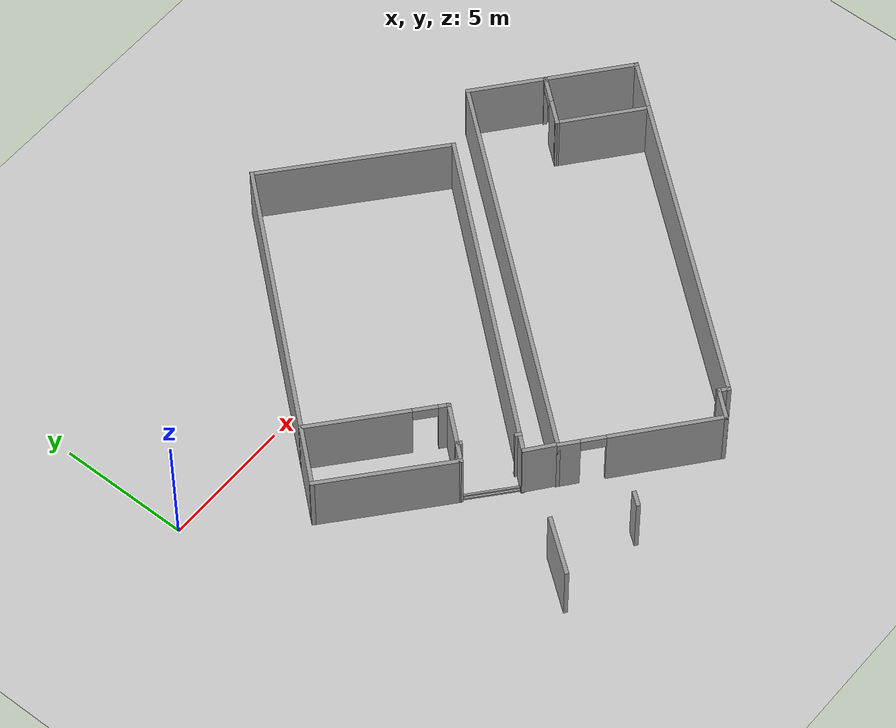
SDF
<sdf version="1.6">
 <world name="default">
  <model name="ground_plane">
   <static>1</static>
   <link name="link">
    <collision name="collision">
     <geometry><plane><normal>0 0 1</normal><size>100 100</size></plane></geometry>
     <surface>
      <contact><collide_bitmask>65535</collide_bitmask></contact>
      <friction><ode><mu>100</mu><mu2>50</mu2></ode></friction>
     </surface>
    </collision>
    <visual name="visual">
     <cast_shadows>0</cast_shadows>
     <geometry><plane><normal>0 0 1</normal><size>100 100</size></plane></geometry>
     <material>
      <script><uri>file://media/materials/scripts/gazebo.material</uri><name>Gazebo/Grey</name></script>
     </material>
    </visual>
   </link>
  </model>
  <model name="1804">
   <pose>10.1904 -0.701306 0 0 0 -0.710113</pose>
   <link name="Stairs_1">
    <visual name="Stairs_1_Visual_0">
     <pose>2.5799 -6.58604 0.0375 0 -0 -3.14159</pose>
     <geometry><box><size>2.12 0.075 0.075</size></box></geometry>
     <material>
      <script><uri>file://media/materials/scripts/gazebo.material</uri><name>Gazebo/Grey</name></script>
      <ambient>1 1 1 1</ambient>
     </material>
     <meta><layer>0</layer></meta>
    </visual>
    <collision name="Stairs_1_Collision_0">
     <geometry><box><size>2.12 0.075 0.075</size></box></geometry>
     <pose>2.5799 -6.58604 0.0375 0 -0 -3.14159</pose>
    </collision>
    <visual name="Stairs_1_Visual_1">
     <pose>2.5799 -6.51104 0.1125 0 -0 -3.14159</pose>
     <geometry><box><size>2.12 0.075 0.075</size></box></geometry>
     <material>
      <script><uri>file://media/materials/scripts/gazebo.material</uri><name>Gazebo/Grey</name></script>
      <ambient>1 1 1 1</ambient>
     </material>
     <meta><layer>0</layer></meta>
    </visual>
    <collision name="Stairs_1_Collision_1">
     <geometry><box><size>2.12 0.075 0.075</size></box></geometry>
     <pose>2.5799 -6.51104 0.1125 0 -0 -3.14159</pose>
    </collision>
   </link>
   <link name="Wall_40">
    <collision name="Wall_40_Collision">
     <geometry><box><size>5.25 0.15 2.5</size></box></geometry>
     <pose>0 0 1.25 0 -0 0</pose>
    </collision>
    <visual name="Wall_40_Visual">
     <pose>0 0 1.25 0 -0 0</pose>
     <geometry><box><size>5.25 0.15 2.5</size></box></geometry>
     <material>
      <script><uri>file://media/materials/scripts/gazebo.material</uri><name>Gazebo/Grey</name></script>
      <ambient>1 1 1 1</ambient>
     </material>
     <meta><layer>0</layer></meta>
    </visual>
    <pose>-1.0762 -6.6225 0 0 -0 3.14159</pose>
   </link>
   <link name="Wall_41">
    <collision name="Wall_41_Collision">
     <geometry><box><size>13.395 0.15 2.5</size></box></geometry>
     <pose>0 0 1.25 0 -0 0</pose>
    </collision>
    <visual name="Wall_41_Visual">
     <pose>0 0 1.25 0 -0 0</pose>
     <geometry><box><size>13.395 0.15 2.5</size></box></geometry>
     <material>
      <script><uri>file://media/materials/scripts/gazebo.material</uri><name>Gazebo/Grey</name></script>
      <ambient>1 1 1 1</ambient>
     </material>
     <meta><layer>0</layer></meta>
    </visual>
    <pose>-3.6262 0 0 0 -0 1.5708</pose>
   </link>
   <link name="Wall_42">
    <collision name="Wall_42_Collision">
     <geometry><box><size>7.397 0.15 2.5</size></box></geometry>
     <pose>0 0 1.25 0 -0 0</pose>
    </collision>
    <visual name="Wall_42_Visual">
     <pose>0 0 1.25 0 -0 0</pose>
     <geometry><box><size>7.397 0.15 2.5</size></box></geometry>
     <material>
      <script><uri>file://media/materials/scripts/gazebo.material</uri><name>Gazebo/Grey</name></script>
      <ambient>1 1 1 1</ambient>
     </material>
     <meta><layer>0</layer></meta>
    </visual>
    <pose>-0.002699 6.6225 0 0 -0 0</pose>
   </link>
   <link name="Wall_43">
    <collision name="Wall_43_Collision">
     <geometry><box><size>13.3954 0.15 2.5</size></box></geometry>
     <pose>0 0 1.25 0 -0 0</pose>
    </collision>
    <visual name="Wall_43_Visual">
     <pose>0 0 1.25 0 -0 0</pose>
     <geometry><box><size>13.3954 0.15 2.5</size></box></geometry>
     <material>
      <script><uri>file://media/materials/scripts/gazebo.material</uri><name>Gazebo/Grey</name></script>
      <ambient>1 1 1 1</ambient>
     </material>
     <meta><layer>0</layer></meta>
    </visual>
    <pose>3.6208 0 0 0 -0 -1.5708</pose>
   </link>
   <link name="Wall_45">
    <collision name="Wall_45_Collision">
     <geometry><box><size>0.854548 0.15 2.5</size></box></geometry>
     <pose>0 0 1.25 0 -0 0</pose>
    </collision>
    <visual name="Wall_45_Visual">
     <pose>0 0 1.25 0 -0 0</pose>
     <geometry><box><size>0.854548 0.15 2.5</size></box></geometry>
     <material>
      <script><uri>file://media/materials/scripts/gazebo.material</uri><name>Gazebo/Grey</name></script>
      <ambient>1 1 1 1</ambient>
     </material>
     <meta><layer>0</layer></meta>
    </visual>
    <pose>1.47361 -6.27023 0 0 -0 1.57135</pose>
   </link>
   <link name="Wall_46">
    <collision name="Wall_46_Collision">
     <geometry><box><size>0.25 0.15 2.5</size></box></geometry>
     <pose>0 0 1.25 0 -0 0</pose>
    </collision>
    <visual name="Wall_46_Visual">
     <pose>0 0 1.25 0 -0 0</pose>
     <geometry><box><size>0.25 0.15 2.5</size></box></geometry>
     <material>
      <script><uri>file://media/materials/scripts/gazebo.material</uri><name>Gazebo/Grey</name></script>
      <ambient>1 1 1 1</ambient>
     </material>
     <meta><layer>0</layer></meta>
    </visual>
    <pose>1.52341 -5.91795 0 0 -0 0</pose>
   </link>
   <link name="Wall_48">
    <collision name="Wall_48_Collision">
     <geometry><box><size>0.25 0.15 2.5</size></box></geometry>
     <pose>0 0 1.25 0 -0 0</pose>
    </collision>
    <visual name="Wall_48_Visual">
     <pose>0 0 1.25 0 -0 0</pose>
     <geometry><box><size>0.25 0.15 2.5</size></box></geometry>
     <material>
      <script><uri>file://media/materials/scripts/gazebo.material</uri><name>Gazebo/Grey</name></script>
      <ambient>1 1 1 1</ambient>
     </material>
     <meta><layer>0</layer></meta>
    </visual>
    <pose>3.57659 -5.92481 0 0 -0 0</pose>
   </link>
   <link name="Wall_50">
    <collision name="Wall_50_Collision">
     <geometry><box><size>1.75 0.15 2.5</size></box></geometry>
     <pose>0 0 1.25 0 -0 0</pose>
    </collision>
    <visual name="Wall_50_Visual">
     <pose>0 0 1.25 0 -0 0</pose>
     <geometry><box><size>1.75 0.15 2.5</size></box></geometry>
     <material>
      <script><uri>file://media/materials/scripts/gazebo.material</uri><name>Gazebo/Grey</name></script>
      <ambient>1 1 1 1</ambient>
     </material>
     <meta><layer>0</layer></meta>
    </visual>
    <pose>1.47341 -5.11795 0 0 -0 1.5708</pose>
   </link>
   <link name="Wall_51">
    <pose>-1.07659 -4.31795 0 0 -0 3.14159</pose>
    <visual name="Wall_51_Visual_0">
     <pose>-2.40355 0 1.25 0 -0 0</pose>
     <geometry><box><size>0.442906 0.15 2.5</size></box></geometry>
     <material>
      <script><uri>file://media/materials/scripts/gazebo.material</uri><name>Gazebo/Grey</name></script>
      <ambient>1 1 1 1</ambient>
     </material>
     <meta><layer>0</layer></meta>
    </visual>
    <collision name="Wall_51_Collision_0">
     <geometry><box><size>0.442906 0.15 2.5</size></box></geometry>
     <pose>-2.40355 0 1.25 0 -0 0</pose>
    </collision>
    <visual name="Wall_51_Visual_1">
     <pose>0.671453 0 1.25 0 -0 0</pose>
     <geometry><box><size>3.90709 0.15 2.5</size></box></geometry>
     <material>
      <script><uri>file://media/materials/scripts/gazebo.material</uri><name>Gazebo/Grey</name></script>
      <ambient>1 1 1 1</ambient>
     </material>
     <meta><layer>0</layer></meta>
    </visual>
    <collision name="Wall_51_Collision_1">
     <geometry><box><size>3.90709 0.15 2.5</size></box></geometry>
     <pose>0.671453 0 1.25 0 -0 0</pose>
    </collision>
    <visual name="Wall_51_Visual_2">
     <pose>-1.73209 0 2.25 0 -0 0</pose>
     <geometry><box><size>0.9 0.15 0.5</size></box></geometry>
     <material>
      <script><uri>file://media/materials/scripts/gazebo.material</uri><name>Gazebo/Grey</name></script>
      <ambient>1 1 1 1</ambient>
     </material>
     <meta><layer>0</layer></meta>
    </visual>
    <collision name="Wall_51_Collision_2">
     <geometry><box><size>0.9 0.15 0.5</size></box></geometry>
     <pose>-1.73209 0 2.25 0 -0 0</pose>
    </collision>
   </link>
   <static>1</static>
  </model>
  <model name="1803">
   <pose>16.8833 -4.84922 0 0 -0 2.44874</pose>
   <link name="Wall_14">
    <pose>0.175076 7.7485 0 0 -0 0</pose>
    <visual name="Wall_14_Visual_0">
     <pose>-0.877839 0 1.25 0 -0 0</pose>
     <geometry><box><size>4.24432 0.15 2.5</size></box></geometry>
     <material>
      <script><uri>file://media/materials/scripts/gazebo.material</uri><name>Gazebo/Grey</name></script>
      <ambient>1 1 1 1</ambient>
     </material>
     <meta><layer>0</layer></meta>
    </visual>
    <collision name="Wall_14_Collision_0">
     <geometry><box><size>4.24432 0.15 2.5</size></box></geometry>
     <pose>-0.877839 0 1.25 0 -0 0</pose>
    </collision>
    <visual name="Wall_14_Visual_1">
     <pose>2.57216 0 1.25 0 -0 0</pose>
     <geometry><box><size>0.855678 0.15 2.5</size></box></geometry>
     <material>
      <script><uri>file://media/materials/scripts/gazebo.material</uri><name>Gazebo/Grey</name></script>
      <ambient>1 1 1 1</ambient>
     </material>
     <meta><layer>0</layer></meta>
    </visual>
    <collision name="Wall_14_Collision_1">
     <geometry><box><size>0.855678 0.15 2.5</size></box></geometry>
     <pose>2.57216 0 1.25 0 -0 0</pose>
    </collision>
    <visual name="Wall_14_Visual_2">
     <pose>1.69432 0 2.25 0 -0 0</pose>
     <geometry><box><size>0.9 0.15 0.5</size></box></geometry>
     <material>
      <script><uri>file://media/materials/scripts/gazebo.material</uri><name>Gazebo/Grey</name></script>
      <ambient>1 1 1 1</ambient>
     </material>
     <meta><layer>0</layer></meta>
    </visual>
    <collision name="Wall_14_Collision_2">
     <geometry><box><size>0.9 0.15 0.5</size></box></geometry>
     <pose>1.69432 0 2.25 0 -0 0</pose>
    </collision>
   </link>
   <link name="Wall_15">
    <collision name="Wall_15_Collision">
     <geometry><box><size>15.647 0.15 2.5</size></box></geometry>
     <pose>0 0 1.25 0 -0 0</pose>
    </collision>
    <visual name="Wall_15_Visual">
     <pose>0 0 1.25 0 -0 0</pose>
     <geometry><box><size>15.647 0.15 2.5</size></box></geometry>
     <material>
      <script><uri>file://media/materials/scripts/gazebo.material</uri><name>Gazebo/Grey</name></script>
      <ambient>1 1 1 1</ambient>
     </material>
     <meta><layer>0</layer></meta>
    </visual>
    <pose>3.10008 -0 0 0 -0 -1.5708</pose>
   </link>
   <link name="Wall_17">
    <collision name="Wall_17_Collision">
     <geometry><box><size>2.15 0.15 2.5</size></box></geometry>
     <pose>0 0 1.25 0 -0 0</pose>
    </collision>
    <visual name="Wall_17_Visual">
     <pose>0 0 1.25 0 -0 0</pose>
     <geometry><box><size>2.15 0.15 2.5</size></box></geometry>
     <material>
      <script><uri>file://media/materials/scripts/gazebo.material</uri><name>Gazebo/Grey</name></script>
      <ambient>1 1 1 1</ambient>
     </material>
     <meta><layer>0</layer></meta>
    </visual>
    <pose>-3.09992 -6.7485 0 0 -0 -1.5708</pose>
   </link>
   <link name="Wall_18">
    <collision name="Wall_18_Collision">
     <geometry><box><size>3.5 0.15 2.5</size></box></geometry>
     <pose>0 0 1.25 0 -0 0</pose>
    </collision>
    <visual name="Wall_18_Visual">
     <pose>0 0 1.25 0 -0 0</pose>
     <geometry><box><size>3.5 0.15 2.5</size></box></geometry>
     <material>
      <script><uri>file://media/materials/scripts/gazebo.material</uri><name>Gazebo/Grey</name></script>
      <ambient>1 1 1 1</ambient>
     </material>
     <meta><layer>0</layer></meta>
    </visual>
    <pose>-1.42492 -7.7485 0 0 -0 0</pose>
   </link>
   <link name="Wall_2">
    <collision name="Wall_2_Collision">
     <geometry><box><size>1.25 0.15 2.5</size></box></geometry>
     <pose>0 0 1.25 0 -0 0</pose>
    </collision>
    <visual name="Wall_2_Visual">
     <pose>0 0 1.25 0 -0 0</pose>
     <geometry><box><size>1.25 0.15 2.5</size></box></geometry>
     <material>
      <script><uri>file://media/materials/scripts/gazebo.material</uri><name>Gazebo/Grey</name></script>
      <ambient>1 1 1 1</ambient>
     </material>
     <meta><layer>0</layer></meta>
    </visual>
    <pose>-2.74992 7.1985 0 0 -0 -1.5708</pose>
   </link>
   <link name="Wall_3">
    <collision name="Wall_3_Collision">
     <geometry><box><size>0.5 0.15 2.5</size></box></geometry>
     <pose>0 0 1.25 0 -0 0</pose>
    </collision>
    <visual name="Wall_3_Visual">
     <pose>0 0 1.25 0 -0 0</pose>
     <geometry><box><size>0.5 0.15 2.5</size></box></geometry>
     <material>
      <script><uri>file://media/materials/scripts/gazebo.material</uri><name>Gazebo/Grey</name></script>
      <ambient>1 1 1 1</ambient>
     </material>
     <meta><layer>0</layer></meta>
    </visual>
    <pose>-2.92492 6.6485 0 0 -0 3.14159</pose>
   </link>
   <link name="Wall_4">
    <collision name="Wall_4_Collision">
     <geometry><box><size>12.547 0.15 2.5</size></box></geometry>
     <pose>0 0 1.25 0 -0 0</pose>
    </collision>
    <visual name="Wall_4_Visual">
     <pose>0 0 1.25 0 -0 0</pose>
     <geometry><box><size>12.547 0.15 2.5</size></box></geometry>
     <material>
      <script><uri>file://media/materials/scripts/gazebo.material</uri><name>Gazebo/Grey</name></script>
      <ambient>1 1 1 1</ambient>
     </material>
     <meta><layer>0</layer></meta>
    </visual>
    <pose>-3.09992 0.45 0 0 -0 -1.5708</pose>
   </link>
   <link name="Wall_5">
    <collision name="Wall_5_Collision">
     <geometry><box><size>3.5 0.15 2.5</size></box></geometry>
     <pose>0 0 1.25 0 -0 0</pose>
    </collision>
    <visual name="Wall_5_Visual">
     <pose>0 0 1.25 0 -0 0</pose>
     <geometry><box><size>3.5 0.15 2.5</size></box></geometry>
     <material>
      <script><uri>file://media/materials/scripts/gazebo.material</uri><name>Gazebo/Grey</name></script>
      <ambient>1 1 1 1</ambient>
     </material>
     <meta><layer>0</layer></meta>
    </visual>
    <pose>-1.42492 -5.745 0 0 -0 0.00209</pose>
   </link>
   <link name="Wall_6">
    <pose>0.250076 -6.745 0 0 -0 -1.5708</pose>
    <visual name="Wall_6_Visual_0">
     <pose>-0.556999 0 1.25 0 -0 0</pose>
     <geometry><box><size>1.043 0.15 2.5</size></box></geometry>
     <material>
      <script><uri>file://media/materials/scripts/gazebo.material</uri><name>Gazebo/Grey</name></script>
      <ambient>1 1 1 1</ambient>
     </material>
     <meta><layer>0</layer></meta>
    </visual>
    <collision name="Wall_6_Collision_0">
     <geometry><box><size>1.043 0.15 2.5</size></box></geometry>
     <pose>-0.556999 0 1.25 0 -0 0</pose>
    </collision>
    <visual name="Wall_6_Visual_1">
     <pose>0.971501 0 1.25 0 -0 0</pose>
     <geometry><box><size>0.213998 0.15 2.5</size></box></geometry>
     <material>
      <script><uri>file://media/materials/scripts/gazebo.material</uri><name>Gazebo/Grey</name></script>
      <ambient>1 1 1 1</ambient>
     </material>
     <meta><layer>0</layer></meta>
    </visual>
    <collision name="Wall_6_Collision_1">
     <geometry><box><size>0.213998 0.15 2.5</size></box></geometry>
     <pose>0.971501 0 1.25 0 -0 0</pose>
    </collision>
    <visual name="Wall_6_Visual_2">
     <pose>0.414502 0 2.25 0 -0 0</pose>
     <geometry><box><size>0.9 0.15 0.5</size></box></geometry>
     <material>
      <script><uri>file://media/materials/scripts/gazebo.material</uri><name>Gazebo/Grey</name></script>
      <ambient>1 1 1 1</ambient>
     </material>
     <meta><layer>0</layer></meta>
    </visual>
    <collision name="Wall_6_Collision_2">
     <geometry><box><size>0.9 0.15 0.5</size></box></geometry>
     <pose>0.414502 0 2.25 0 -0 0</pose>
    </collision>
   </link>
   <link name="Wall_7">
    <collision name="Wall_7_Collision">
     <geometry><box><size>3 0.15 2.5</size></box></geometry>
     <pose>0 0 1.25 0 -0 0</pose>
    </collision>
    <visual name="Wall_7_Visual">
     <pose>0 0 1.25 0 -0 0</pose>
     <geometry><box><size>3 0.15 2.5</size></box></geometry>
     <material>
      <script><uri>file://media/materials/scripts/gazebo.material</uri><name>Gazebo/Grey</name></script>
      <ambient>1 1 1 1</ambient>
     </material>
     <meta><layer>0</layer></meta>
    </visual>
    <pose>1.67508 -7.7485 0 0 -0 0</pose>
   </link>
   <static>1</static>
  </model>
  <model name="wall(2.3)">
   <link name="Wall_0">
    <pose>0.83486 -0.115986 -0.042972 0 -0 0</pose>
    <inertial>
     <mass>1</mass>
     <inertia><ixx>1</ixx><ixy>0</ixy><ixz>0</ixz><iyy>1</iyy><iyz>0</iyz><izz>1</izz></inertia>
    </inertial>
    <visual name="Wall_0_Visual">
     <pose>0 0 1.25 0 -0 0</pose>
     <geometry><box><size>2.3 0.15 2.5</size></box></geometry>
     <material>
      <script><uri>file://media/materials/scripts/gazebo.material</uri><name>Gazebo/Grey</name></script>
      <ambient>1 1 1 1</ambient>
      <shader type="vertex"><normal_map>__default__</normal_map></shader>
      <diffuse>0.7 0.7 0.7 1</diffuse>
      <specular>0.01 0.01 0.01 1</specular>
      <emissive>0 0 0 1</emissive>
     </material>
     <meta><layer>0</layer></meta>
    </visual>
    <collision name="Wall_0_Collision">
     <pose>0 0 1.25 0 -0 0</pose>
     <geometry><box><size>2.25 0.15 2.5</size></box></geometry>
     <surface>
      <friction>
       <ode><mu>1</mu><mu2>1</mu2><fdir1>0 0 0</fdir1><slip1>0</slip1><slip2>0</slip2></ode>
       <torsional>
        <coefficient>1</coefficient>
        <patch_radius>0</patch_radius>
        <surface_radius>0</surface_radius>
        <use_patch_radius>1</use_patch_radius>
        <ode><slip>0</slip></ode>
       </torsional>
      </friction>
      <bounce><restitution_coefficient>0</restitution_coefficient><threshold>1e+06</threshold></bounce>
      <contact>
       <collide_without_contact>0</collide_without_contact>
       <collide_without_contact_bitmask>1</collide_without_contact_bitmask>
       <collide_bitmask>1</collide_bitmask>
       <ode>
        <soft_cfm>0</soft_cfm>
        <soft_erp>0.2</soft_erp>
        <kp>1e+13</kp>
        <kd>1</kd>
        <max_vel>0.01</max_vel>
        <min_depth>0</min_depth>
       </ode>
       <bullet>
        <split_impulse>1</split_impulse>
        <split_impulse_penetration_threshold>-0.01</split_impulse_penetration_threshold>
        <soft_cfm>0</soft_cfm>
        <soft_erp>0.2</soft_erp>
        <kp>1e+13</kp>
        <kd>1</kd>
       </bullet>
      </contact>
     </surface>
    </collision>
   </link>
   <static>1</static>
   <pose>7.0369 -10.7173 0 0 0 -2.22485</pose>
  </model>
  <model name="wall(1.2)_clone_0_clone">
   <link name="Wall_106">
    <inertial>
     <mass>1</mass>
     <inertia><ixx>1</ixx><ixy>0</ixy><ixz>0</ixz><iyy>1</iyy><iyz>0</iyz><izz>1</izz></inertia>
    </inertial>
    <visual name="Wall_106_Visual">
     <pose>0 0 1.25 0 -0 0</pose>
     <geometry><box><size>1.2 0.15 2.5</size></box></geometry>
     <material>
      <script><uri>file://media/materials/scripts/gazebo.material</uri><name>Gazebo/Grey</name></script>
      <ambient>1 1 1 1</ambient>
      <shader type="vertex"><normal_map>__default__</normal_map></shader>
      <diffuse>0.7 0.7 0.7 1</diffuse>
      <specular>0.01 0.01 0.01 1</specular>
      <emissive>0 0 0 1</emissive>
     </material>
     <meta><layer>0</layer></meta>
    </visual>
    <collision name="Wall_106_Collision">
     <pose>0 0 1.25 0 -0 0</pose>
     <geometry><box><size>1.2 0.15 2.5</size></box></geometry>
     <surface>
      <friction>
       <ode><mu>1</mu><mu2>1</mu2><fdir1>0 0 0</fdir1><slip1>0</slip1><slip2>0</slip2></ode>
       <torsional>
        <coefficient>1</coefficient>
        <patch_radius>0</patch_radius>
        <surface_radius>0</surface_radius>
        <use_patch_radius>1</use_patch_radius>
        <ode><slip>0</slip></ode>
       </torsional>
      </friction>
      <bounce><restitution_coefficient>0</restitution_coefficient><threshold>1e+06</threshold></bounce>
      <contact>
       <collide_without_contact>0</collide_without_contact>
       <collide_without_contact_bitmask>1</collide_without_contact_bitmask>
       <collide_bitmask>1</collide_bitmask>
       <ode>
        <soft_cfm>0</soft_cfm>
        <soft_erp>0.2</soft_erp>
        <kp>1e+13</kp>
        <kd>1</kd>
        <max_vel>0.01</max_vel>
        <min_depth>0</min_depth>
       </ode>
       <bullet>
        <split_impulse>1</split_impulse>
        <split_impulse_penetration_threshold>-0.01</split_impulse_penetration_threshold>
        <soft_cfm>0</soft_cfm>
        <soft_erp>0.2</soft_erp>
        <kp>1e+13</kp>
        <kd>1</kd>
       </bullet>
      </contact>
     </surface>
    </collision>
   </link>
   <static>1</static>
   <pose>9.03825 -8.42687 0.050769 0 0 -0.668417</pose>
  </model>
  <model name="wall(0.6)_clone_clone">
   <link name="Wall_0">
    <inertial>
     <mass>1</mass>
     <inertia><ixx>1</ixx><ixy>0</ixy><ixz>0</ixz><iyy>1</iyy><iyz>0</iyz><izz>1</izz></inertia>
    </inertial>
    <visual name="Wall_0_Visual">
     <pose>0 0 1.25 0 -0 0</pose>
     <geometry><box><size>0.6 0.15 2.5</size></box></geometry>
     <material>
      <script><uri>file://media/materials/scripts/gazebo.material</uri><name>Gazebo/Grey</name></script>
      <ambient>1 1 1 1</ambient>
      <shader type="vertex"><normal_map>__default__</normal_map></shader>
      <diffuse>0.7 0.7 0.7 1</diffuse>
      <specular>0.01 0.01 0.01 1</specular>
      <emissive>0 0 0 1</emissive>
     </material>
     <meta><layer>0</layer></meta>
    </visual>
    <collision name="Wall_0_Collision">
     <pose>0 0 1.25 0 -0 0</pose>
     <geometry><box><size>0.6 0.15 2.5</size></box></geometry>
     <surface>
      <friction>
       <ode><mu>1</mu><mu2>1</mu2><fdir1>0 0 0</fdir1><slip1>0</slip1><slip2>0</slip2></ode>
       <torsional>
        <coefficient>1</coefficient>
        <patch_radius>0</patch_radius>
        <surface_radius>0</surface_radius>
        <use_patch_radius>1</use_patch_radius>
        <ode><slip>0</slip></ode>
       </torsional>
      </friction>
      <bounce><restitution_coefficient>0</restitution_coefficient><threshold>1e+06</threshold></bounce>
      <contact>
       <collide_without_contact>0</collide_without_contact>
       <collide_without_contact_bitmask>1</collide_without_contact_bitmask>
       <collide_bitmask>1</collide_bitmask>
       <ode>
        <soft_cfm>0</soft_cfm>
        <soft_erp>0.2</soft_erp>
        <kp>1e+13</kp>
        <kd>1</kd>
        <max_vel>0.01</max_vel>
        <min_depth>0</min_depth>
       </ode>
       <bullet>
        <split_impulse>1</split_impulse>
        <split_impulse_penetration_threshold>-0.01</split_impulse_penetration_threshold>
        <soft_cfm>0</soft_cfm>
        <soft_erp>0.2</soft_erp>
        <kp>1e+13</kp>
        <kd>1</kd>
       </bullet>
      </contact>
     </surface>
    </collision>
   </link>
   <static>1</static>
   <pose>9.51238 -12.2087 0 0 0 -2.22485</pose>
  </model>
 </world>
</sdf>
